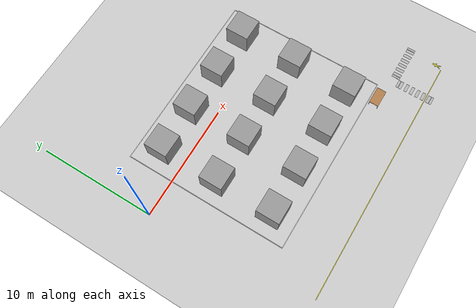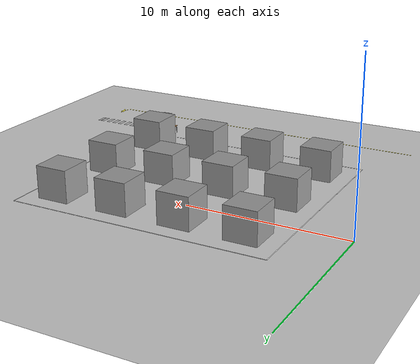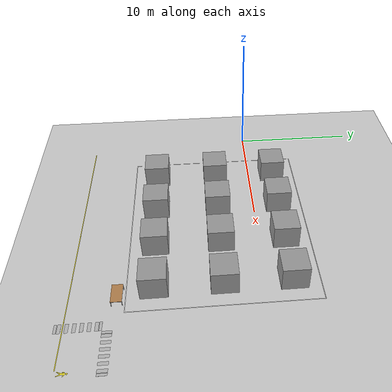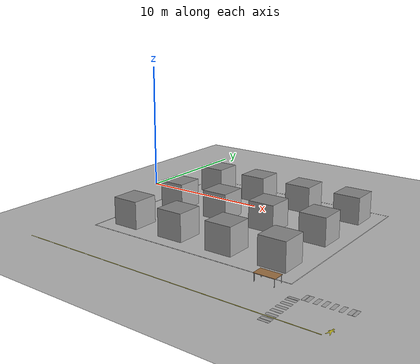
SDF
<sdf version="1.6">
 <world name="default">
  <model name="ground_plane">
   <static>1</static>
   <link name="link">
    <collision name="collision">
     <geometry><plane><normal>0 0 1</normal><size>100 100</size></plane></geometry>
     <surface><friction><ode><mu>100</mu><mu2>50</mu2></ode></friction></surface>
    </collision>
    <visual name="visual">
     <cast_shadows>0</cast_shadows>
     <geometry><plane><normal>0 0 1</normal><size>100 100</size></plane></geometry>
     <material>
      <script><uri>file://media/materials/scripts/gazebo.material</uri><name>Gazebo/Grey</name></script>
     </material>
    </visual>
   </link>
  </model>
  <model name="line22m_0">
   <link name="link_2">
    <inertial>
     <mass>1</mass>
     <inertia>
      <ixx>0.166667</ixx>
      <ixy>0</ixy>
      <ixz>0</ixz>
      <iyy>0.166667</iyy>
      <iyz>0</iyz>
      <izz>0.166667</izz>
     </inertia>
    </inertial>
    <visual name="visual">
     <geometry><box><size>0.05 22 0.001</size></box></geometry>
     <material>
      <lighting>1</lighting>
      <script><uri>file://media/materials/scripts/gazebo.material</uri><name>Gazebo/Yellow</name></script>
     </material>
    </visual>
   </link>
   <static>1</static>
   <pose>12.1233 -13.9726 0 0 -0 1.5708</pose>
  </model>
  <model name="CNCUnit_0">
   <link name="link_2">
    <inertial>
     <mass>1</mass>
     <inertia>
      <ixx>0.166667</ixx>
      <ixy>0</ixy>
      <ixz>0</ixz>
      <iyy>0.166667</iyy>
      <iyz>0</iyz>
      <izz>0.166667</izz>
     </inertia>
    </inertial>
    <visual name="ModelPreview_4::link_2::visual_2">
     <pose>-2 0 1 0 -0 0</pose>
     <geometry><box><size>2 2 2</size></box></geometry>
     <material>
      <lighting>1</lighting>
      <script><uri>file://media/materials/scripts/gazebo.material</uri><name>Gazebo/Grey</name></script>
      <shader type="vertex"><normal_map>__default__</normal_map></shader>
      <ambient>0.3 0.3 0.3 1</ambient>
      <diffuse>0.7 0.7 0.7 1</diffuse>
      <specular>0.01 0.01 0.01 1</specular>
      <emissive>0 0 0 1</emissive>
     </material>
    </visual>
    <visual name="ModelPreview_4::link_2::visual_5">
     <pose>-2 5 1 0 -0 0</pose>
     <geometry><box><size>2 2 2</size></box></geometry>
     <material>
      <lighting>1</lighting>
      <script><uri>file://media/materials/scripts/gazebo.material</uri><name>Gazebo/Grey</name></script>
      <shader type="vertex"><normal_map>__default__</normal_map></shader>
      <ambient>0.3 0.3 0.3 1</ambient>
      <diffuse>0.7 0.7 0.7 1</diffuse>
      <specular>0.01 0.01 0.01 1</specular>
      <emissive>0 0 0 1</emissive>
     </material>
    </visual>
    <visual name="ModelPreview_4::link_2::visual_6">
     <pose>2 5 1 0 -0 0</pose>
     <geometry><box><size>2 2 2</size></box></geometry>
     <material>
      <lighting>1</lighting>
      <script><uri>file://media/materials/scripts/gazebo.material</uri><name>Gazebo/Grey</name></script>
      <shader type="vertex"><normal_map>__default__</normal_map></shader>
      <ambient>0.3 0.3 0.3 1</ambient>
      <diffuse>0.7 0.7 0.7 1</diffuse>
      <specular>0.01 0.01 0.01 1</specular>
      <emissive>0 0 0 1</emissive>
     </material>
    </visual>
    <visual name="ModelPreview_4::link_2::visual_1">
     <pose>6 0 1 0 -0 0</pose>
     <geometry><box><size>2 2 2</size></box></geometry>
     <material>
      <lighting>1</lighting>
      <script><uri>file://media/materials/scripts/gazebo.material</uri><name>Gazebo/Grey</name></script>
      <shader type="vertex"><normal_map>__default__</normal_map></shader>
      <ambient>0.3 0.3 0.3 1</ambient>
      <diffuse>0.7 0.7 0.7 1</diffuse>
      <specular>0.01 0.01 0.01 1</specular>
      <emissive>0 0 0 1</emissive>
     </material>
    </visual>
    <visual name="visual">
     <pose>2 0 1 0 -0 0</pose>
     <geometry><box><size>2 2 2</size></box></geometry>
     <material>
      <lighting>1</lighting>
      <script><uri>file://media/materials/scripts/gazebo.material</uri><name>Gazebo/Grey</name></script>
      <shader type="vertex"><normal_map>__default__</normal_map></shader>
      <ambient>0.3 0.3 0.3 1</ambient>
      <diffuse>0.7 0.7 0.7 1</diffuse>
      <specular>0.01 0.01 0.01 1</specular>
      <emissive>0 0 0 1</emissive>
     </material>
    </visual>
    <visual name="ModelPreview_4::link_2::visual_4">
     <pose>-6 5 1 0 -0 0</pose>
     <geometry><box><size>2 2 2</size></box></geometry>
     <material>
      <lighting>1</lighting>
      <script><uri>file://media/materials/scripts/gazebo.material</uri><name>Gazebo/Grey</name></script>
      <shader type="vertex"><normal_map>__default__</normal_map></shader>
      <ambient>0.3 0.3 0.3 1</ambient>
      <diffuse>0.7 0.7 0.7 1</diffuse>
      <specular>0.01 0.01 0.01 1</specular>
      <emissive>0 0 0 1</emissive>
     </material>
    </visual>
    <visual name="ModelPreview_4::link_2::visual_7">
     <pose>6 5 1 0 -0 0</pose>
     <geometry><box><size>2 2 2</size></box></geometry>
     <material>
      <lighting>1</lighting>
      <script><uri>file://media/materials/scripts/gazebo.material</uri><name>Gazebo/Grey</name></script>
      <shader type="vertex"><normal_map>__default__</normal_map></shader>
      <ambient>0.3 0.3 0.3 1</ambient>
      <diffuse>0.7 0.7 0.7 1</diffuse>
      <specular>0.01 0.01 0.01 1</specular>
      <emissive>0 0 0 1</emissive>
     </material>
    </visual>
    <visual name="ModelPreview_4::link_2::visual_3">
     <pose>-6 0 1 0 -0 0</pose>
     <geometry><box><size>2 2 2</size></box></geometry>
     <material>
      <lighting>1</lighting>
      <script><uri>file://media/materials/scripts/gazebo.material</uri><name>Gazebo/Grey</name></script>
      <shader type="vertex"><normal_map>__default__</normal_map></shader>
      <ambient>0.3 0.3 0.3 1</ambient>
      <diffuse>0.7 0.7 0.7 1</diffuse>
      <specular>0.01 0.01 0.01 1</specular>
      <emissive>0 0 0 1</emissive>
     </material>
    </visual>
    <visual name="ModelPreview_4::link_2::visual_8">
     <pose>-6 -5 1 0 -0 0</pose>
     <geometry><box><size>2 2 2</size></box></geometry>
     <material>
      <lighting>1</lighting>
      <script><uri>file://media/materials/scripts/gazebo.material</uri><name>Gazebo/Grey</name></script>
      <shader type="vertex"><normal_map>__default__</normal_map></shader>
      <ambient>0.3 0.3 0.3 1</ambient>
      <diffuse>0.7 0.7 0.7 1</diffuse>
      <specular>0.01 0.01 0.01 1</specular>
      <emissive>0 0 0 1</emissive>
     </material>
    </visual>
    <visual name="ModelPreview_4::link_2::visual_9">
     <pose>-2 -5 1 0 -0 0</pose>
     <geometry><box><size>2 2 2</size></box></geometry>
     <material>
      <lighting>1</lighting>
      <script><uri>file://media/materials/scripts/gazebo.material</uri><name>Gazebo/Grey</name></script>
      <shader type="vertex"><normal_map>__default__</normal_map></shader>
      <ambient>0.3 0.3 0.3 1</ambient>
      <diffuse>0.7 0.7 0.7 1</diffuse>
      <specular>0.01 0.01 0.01 1</specular>
      <emissive>0 0 0 1</emissive>
     </material>
    </visual>
    <visual name="ModelPreview_4::link_2::visual_10">
     <pose>2 -5 1 0 -0 0</pose>
     <geometry><box><size>2 2 2</size></box></geometry>
     <material>
      <lighting>1</lighting>
      <script><uri>file://media/materials/scripts/gazebo.material</uri><name>Gazebo/Grey</name></script>
      <shader type="vertex"><normal_map>__default__</normal_map></shader>
      <ambient>0.3 0.3 0.3 1</ambient>
      <diffuse>0.7 0.7 0.7 1</diffuse>
      <specular>0.01 0.01 0.01 1</specular>
      <emissive>0 0 0 1</emissive>
     </material>
    </visual>
    <visual name="ModelPreview_4::link_2::visual_11">
     <pose>6 -5 1 0 -0 0</pose>
     <geometry><box><size>2 2 2</size></box></geometry>
     <material>
      <lighting>1</lighting>
      <script><uri>file://media/materials/scripts/gazebo.material</uri><name>Gazebo/Grey</name></script>
      <shader type="vertex"><normal_map>__default__</normal_map></shader>
      <ambient>0.3 0.3 0.3 1</ambient>
      <diffuse>0.7 0.7 0.7 1</diffuse>
      <specular>0.01 0.01 0.01 1</specular>
      <emissive>0 0 0 1</emissive>
     </material>
    </visual>
    <visual name="ModelPreview_4::link_2::visual_12">
     <pose>0 -7 0 0 -0 0</pose>
     <geometry><box><size>16.05 0.05 0.001</size></box></geometry>
     <material>
      <lighting>1</lighting>
      <script><uri>file://media/materials/scripts/gazebo.material</uri><name>Gazebo/White</name></script>
     </material>
    </visual>
    <visual name="ModelPreview_4::link_2::visual_13">
     <pose>0 7 0 0 -0 0</pose>
     <geometry><box><size>16.05 0.05 0.001</size></box></geometry>
     <material>
      <lighting>1</lighting>
      <script><uri>file://media/materials/scripts/gazebo.material</uri><name>Gazebo/White</name></script>
     </material>
    </visual>
    <visual name="ModelPreview_4::link_2::visual_14">
     <pose>8 0 0 0 -0 0</pose>
     <geometry><box><size>0.05 14 0.001</size></box></geometry>
     <material>
      <lighting>1</lighting>
      <script><uri>file://media/materials/scripts/gazebo.material</uri><name>Gazebo/White</name></script>
      <emissive>0 0 0 1</emissive>
     </material>
    </visual>
    <visual name="ModelPreview_4::link_2::visual_15">
     <pose>-8 0 0 0 -0 0</pose>
     <geometry><box><size>0.05 14 0.001</size></box></geometry>
     <material>
      <lighting>1</lighting>
      <script><uri>file://media/materials/scripts/gazebo.material</uri><name>Gazebo/White</name></script>
     </material>
    </visual>
    <collision name="collision_9">
     <pose>6 -5 1 0 -0 0</pose>
     <geometry><box><size>2 2 2</size></box></geometry>
     <surface>
      <friction>
       <ode><mu>1</mu><mu2>1</mu2><fdir1>0 0 0</fdir1><slip1>0</slip1><slip2>0</slip2></ode>
       <torsional>
        <coefficient>1</coefficient>
        <patch_radius>0</patch_radius>
        <surface_radius>0</surface_radius>
        <use_patch_radius>1</use_patch_radius>
        <ode><slip>0</slip></ode>
       </torsional>
      </friction>
      <bounce><restitution_coefficient>0</restitution_coefficient><threshold>1e+06</threshold></bounce>
      <contact>
       <collide_without_contact>0</collide_without_contact>
       <collide_without_contact_bitmask>1</collide_without_contact_bitmask>
       <collide_bitmask>1</collide_bitmask>
       <ode>
        <soft_cfm>0</soft_cfm>
        <soft_erp>0.2</soft_erp>
        <kp>1e+13</kp>
        <kd>1</kd>
        <max_vel>0.01</max_vel>
        <min_depth>0</min_depth>
       </ode>
       <bullet>
        <split_impulse>1</split_impulse>
        <split_impulse_penetration_threshold>-0.01</split_impulse_penetration_threshold>
        <soft_cfm>0</soft_cfm>
        <soft_erp>0.2</soft_erp>
        <kp>1e+13</kp>
        <kd>1</kd>
       </bullet>
      </contact>
     </surface>
    </collision>
    <collision name="collision_6">
     <pose>-2 5 1 0 -0 0</pose>
     <geometry><box><size>2 2 2</size></box></geometry>
     <surface>
      <friction>
       <ode><mu>1</mu><mu2>1</mu2><fdir1>0 0 0</fdir1><slip1>0</slip1><slip2>0</slip2></ode>
       <torsional>
        <coefficient>1</coefficient>
        <patch_radius>0</patch_radius>
        <surface_radius>0</surface_radius>
        <use_patch_radius>1</use_patch_radius>
        <ode><slip>0</slip></ode>
       </torsional>
      </friction>
      <bounce><restitution_coefficient>0</restitution_coefficient><threshold>1e+06</threshold></bounce>
      <contact>
       <collide_without_contact>0</collide_without_contact>
       <collide_without_contact_bitmask>1</collide_without_contact_bitmask>
       <collide_bitmask>1</collide_bitmask>
       <ode>
        <soft_cfm>0</soft_cfm>
        <soft_erp>0.2</soft_erp>
        <kp>1e+13</kp>
        <kd>1</kd>
        <max_vel>0.01</max_vel>
        <min_depth>0</min_depth>
       </ode>
       <bullet>
        <split_impulse>1</split_impulse>
        <split_impulse_penetration_threshold>-0.01</split_impulse_penetration_threshold>
        <soft_cfm>0</soft_cfm>
        <soft_erp>0.2</soft_erp>
        <kp>1e+13</kp>
        <kd>1</kd>
       </bullet>
      </contact>
     </surface>
    </collision>
    <collision name="collision">
     <pose>2 0 1 0 -0 0</pose>
     <geometry><box><size>2 2 2</size></box></geometry>
     <surface>
      <friction>
       <ode><mu>1</mu><mu2>1</mu2><fdir1>0 0 0</fdir1><slip1>0</slip1><slip2>0</slip2></ode>
       <torsional>
        <coefficient>1</coefficient>
        <patch_radius>0</patch_radius>
        <surface_radius>0</surface_radius>
        <use_patch_radius>1</use_patch_radius>
        <ode><slip>0</slip></ode>
       </torsional>
      </friction>
      <bounce><restitution_coefficient>0</restitution_coefficient><threshold>1e+06</threshold></bounce>
      <contact>
       <collide_without_contact>0</collide_without_contact>
       <collide_without_contact_bitmask>1</collide_without_contact_bitmask>
       <collide_bitmask>1</collide_bitmask>
       <ode>
        <soft_cfm>0</soft_cfm>
        <soft_erp>0.2</soft_erp>
        <kp>1e+13</kp>
        <kd>1</kd>
        <max_vel>0.01</max_vel>
        <min_depth>0</min_depth>
       </ode>
       <bullet>
        <split_impulse>1</split_impulse>
        <split_impulse_penetration_threshold>-0.01</split_impulse_penetration_threshold>
        <soft_cfm>0</soft_cfm>
        <soft_erp>0.2</soft_erp>
        <kp>1e+13</kp>
        <kd>1</kd>
       </bullet>
      </contact>
     </surface>
    </collision>
    <collision name="collision_10">
     <pose>-2 -5 1 0 -0 0</pose>
     <geometry><box><size>2 2 2</size></box></geometry>
     <surface>
      <friction>
       <ode><mu>1</mu><mu2>1</mu2><fdir1>0 0 0</fdir1><slip1>0</slip1><slip2>0</slip2></ode>
       <torsional>
        <coefficient>1</coefficient>
        <patch_radius>0</patch_radius>
        <surface_radius>0</surface_radius>
        <use_patch_radius>1</use_patch_radius>
        <ode><slip>0</slip></ode>
       </torsional>
      </friction>
      <bounce><restitution_coefficient>0</restitution_coefficient><threshold>1e+06</threshold></bounce>
      <contact>
       <collide_without_contact>0</collide_without_contact>
       <collide_without_contact_bitmask>1</collide_without_contact_bitmask>
       <collide_bitmask>1</collide_bitmask>
       <ode>
        <soft_cfm>0</soft_cfm>
        <soft_erp>0.2</soft_erp>
        <kp>1e+13</kp>
        <kd>1</kd>
        <max_vel>0.01</max_vel>
        <min_depth>0</min_depth>
       </ode>
       <bullet>
        <split_impulse>1</split_impulse>
        <split_impulse_penetration_threshold>-0.01</split_impulse_penetration_threshold>
        <soft_cfm>0</soft_cfm>
        <soft_erp>0.2</soft_erp>
        <kp>1e+13</kp>
        <kd>1</kd>
       </bullet>
      </contact>
     </surface>
    </collision>
    <collision name="collision_4">
     <pose>2 5 1 0 -0 0</pose>
     <geometry><box><size>2 2 2</size></box></geometry>
     <surface>
      <friction>
       <ode><mu>1</mu><mu2>1</mu2><fdir1>0 0 0</fdir1><slip1>0</slip1><slip2>0</slip2></ode>
       <torsional>
        <coefficient>1</coefficient>
        <patch_radius>0</patch_radius>
        <surface_radius>0</surface_radius>
        <use_patch_radius>1</use_patch_radius>
        <ode><slip>0</slip></ode>
       </torsional>
      </friction>
      <bounce><restitution_coefficient>0</restitution_coefficient><threshold>1e+06</threshold></bounce>
      <contact>
       <collide_without_contact>0</collide_without_contact>
       <collide_without_contact_bitmask>1</collide_without_contact_bitmask>
       <collide_bitmask>1</collide_bitmask>
       <ode>
        <soft_cfm>0</soft_cfm>
        <soft_erp>0.2</soft_erp>
        <kp>1e+13</kp>
        <kd>1</kd>
        <max_vel>0.01</max_vel>
        <min_depth>0</min_depth>
       </ode>
       <bullet>
        <split_impulse>1</split_impulse>
        <split_impulse_penetration_threshold>-0.01</split_impulse_penetration_threshold>
        <soft_cfm>0</soft_cfm>
        <soft_erp>0.2</soft_erp>
        <kp>1e+13</kp>
        <kd>1</kd>
       </bullet>
      </contact>
     </surface>
    </collision>
    <collision name="collision_7">
     <pose>-6 5 1 0 -0 0</pose>
     <geometry><box><size>2 2 2</size></box></geometry>
     <surface>
      <friction>
       <ode><mu>1</mu><mu2>1</mu2><fdir1>0 0 0</fdir1><slip1>0</slip1><slip2>0</slip2></ode>
       <torsional>
        <coefficient>1</coefficient>
        <patch_radius>0</patch_radius>
        <surface_radius>0</surface_radius>
        <use_patch_radius>1</use_patch_radius>
        <ode><slip>0</slip></ode>
       </torsional>
      </friction>
      <bounce><restitution_coefficient>0</restitution_coefficient><threshold>1e+06</threshold></bounce>
      <contact>
       <collide_without_contact>0</collide_without_contact>
       <collide_without_contact_bitmask>1</collide_without_contact_bitmask>
       <collide_bitmask>1</collide_bitmask>
       <ode>
        <soft_cfm>0</soft_cfm>
        <soft_erp>0.2</soft_erp>
        <kp>1e+13</kp>
        <kd>1</kd>
        <max_vel>0.01</max_vel>
        <min_depth>0</min_depth>
       </ode>
       <bullet>
        <split_impulse>1</split_impulse>
        <split_impulse_penetration_threshold>-0.01</split_impulse_penetration_threshold>
        <soft_cfm>0</soft_cfm>
        <soft_erp>0.2</soft_erp>
        <kp>1e+13</kp>
        <kd>1</kd>
       </bullet>
      </contact>
     </surface>
    </collision>
    <collision name="collision_1">
     <pose>-2 0 1 0 -0 0</pose>
     <geometry><box><size>2 2 2</size></box></geometry>
     <surface>
      <friction>
       <ode><mu>1</mu><mu2>1</mu2><fdir1>0 0 0</fdir1><slip1>0</slip1><slip2>0</slip2></ode>
       <torsional>
        <coefficient>1</coefficient>
        <patch_radius>0</patch_radius>
        <surface_radius>0</surface_radius>
        <use_patch_radius>1</use_patch_radius>
        <ode><slip>0</slip></ode>
       </torsional>
      </friction>
      <bounce><restitution_coefficient>0</restitution_coefficient><threshold>1e+06</threshold></bounce>
      <contact>
       <collide_without_contact>0</collide_without_contact>
       <collide_without_contact_bitmask>1</collide_without_contact_bitmask>
       <collide_bitmask>1</collide_bitmask>
       <ode>
        <soft_cfm>0</soft_cfm>
        <soft_erp>0.2</soft_erp>
        <kp>1e+13</kp>
        <kd>1</kd>
        <max_vel>0.01</max_vel>
        <min_depth>0</min_depth>
       </ode>
       <bullet>
        <split_impulse>1</split_impulse>
        <split_impulse_penetration_threshold>-0.01</split_impulse_penetration_threshold>
        <soft_cfm>0</soft_cfm>
        <soft_erp>0.2</soft_erp>
        <kp>1e+13</kp>
        <kd>1</kd>
       </bullet>
      </contact>
     </surface>
    </collision>
    <collision name="collision_5">
     <pose>6 5 1 0 -0 0</pose>
     <geometry><box><size>2 2 2</size></box></geometry>
     <surface>
      <friction>
       <ode><mu>1</mu><mu2>1</mu2><fdir1>0 0 0</fdir1><slip1>0</slip1><slip2>0</slip2></ode>
       <torsional>
        <coefficient>1</coefficient>
        <patch_radius>0</patch_radius>
        <surface_radius>0</surface_radius>
        <use_patch_radius>1</use_patch_radius>
        <ode><slip>0</slip></ode>
       </torsional>
      </friction>
      <bounce><restitution_coefficient>0</restitution_coefficient><threshold>1e+06</threshold></bounce>
      <contact>
       <collide_without_contact>0</collide_without_contact>
       <collide_without_contact_bitmask>1</collide_without_contact_bitmask>
       <collide_bitmask>1</collide_bitmask>
       <ode>
        <soft_cfm>0</soft_cfm>
        <soft_erp>0.2</soft_erp>
        <kp>1e+13</kp>
        <kd>1</kd>
        <max_vel>0.01</max_vel>
        <min_depth>0</min_depth>
       </ode>
       <bullet>
        <split_impulse>1</split_impulse>
        <split_impulse_penetration_threshold>-0.01</split_impulse_penetration_threshold>
        <soft_cfm>0</soft_cfm>
        <soft_erp>0.2</soft_erp>
        <kp>1e+13</kp>
        <kd>1</kd>
       </bullet>
      </contact>
     </surface>
    </collision>
    <collision name="collision_3">
     <pose>6 0 1 0 -0 0</pose>
     <geometry><box><size>2 2 2</size></box></geometry>
     <surface>
      <friction>
       <ode><mu>1</mu><mu2>1</mu2><fdir1>0 0 0</fdir1><slip1>0</slip1><slip2>0</slip2></ode>
       <torsional>
        <coefficient>1</coefficient>
        <patch_radius>0</patch_radius>
        <surface_radius>0</surface_radius>
        <use_patch_radius>1</use_patch_radius>
        <ode><slip>0</slip></ode>
       </torsional>
      </friction>
      <bounce><restitution_coefficient>0</restitution_coefficient><threshold>1e+06</threshold></bounce>
      <contact>
       <collide_without_contact>0</collide_without_contact>
       <collide_without_contact_bitmask>1</collide_without_contact_bitmask>
       <collide_bitmask>1</collide_bitmask>
       <ode>
        <soft_cfm>0</soft_cfm>
        <soft_erp>0.2</soft_erp>
        <kp>1e+13</kp>
        <kd>1</kd>
        <max_vel>0.01</max_vel>
        <min_depth>0</min_depth>
       </ode>
       <bullet>
        <split_impulse>1</split_impulse>
        <split_impulse_penetration_threshold>-0.01</split_impulse_penetration_threshold>
        <soft_cfm>0</soft_cfm>
        <soft_erp>0.2</soft_erp>
        <kp>1e+13</kp>
        <kd>1</kd>
       </bullet>
      </contact>
     </surface>
    </collision>
    <collision name="collision_2">
     <pose>-6 0 1 0 -0 0</pose>
     <geometry><box><size>2 2 2</size></box></geometry>
     <surface>
      <friction>
       <ode><mu>1</mu><mu2>1</mu2><fdir1>0 0 0</fdir1><slip1>0</slip1><slip2>0</slip2></ode>
       <torsional>
        <coefficient>1</coefficient>
        <patch_radius>0</patch_radius>
        <surface_radius>0</surface_radius>
        <use_patch_radius>1</use_patch_radius>
        <ode><slip>0</slip></ode>
       </torsional>
      </friction>
      <bounce><restitution_coefficient>0</restitution_coefficient><threshold>1e+06</threshold></bounce>
      <contact>
       <collide_without_contact>0</collide_without_contact>
       <collide_without_contact_bitmask>1</collide_without_contact_bitmask>
       <collide_bitmask>1</collide_bitmask>
       <ode>
        <soft_cfm>0</soft_cfm>
        <soft_erp>0.2</soft_erp>
        <kp>1e+13</kp>
        <kd>1</kd>
        <max_vel>0.01</max_vel>
        <min_depth>0</min_depth>
       </ode>
       <bullet>
        <split_impulse>1</split_impulse>
        <split_impulse_penetration_threshold>-0.01</split_impulse_penetration_threshold>
        <soft_cfm>0</soft_cfm>
        <soft_erp>0.2</soft_erp>
        <kp>1e+13</kp>
        <kd>1</kd>
       </bullet>
      </contact>
     </surface>
    </collision>
    <collision name="collision_8">
     <pose>2 -5 1 0 -0 0</pose>
     <geometry><box><size>2 2 2</size></box></geometry>
     <surface>
      <friction>
       <ode><mu>1</mu><mu2>1</mu2><fdir1>0 0 0</fdir1><slip1>0</slip1><slip2>0</slip2></ode>
       <torsional>
        <coefficient>1</coefficient>
        <patch_radius>0</patch_radius>
        <surface_radius>0</surface_radius>
        <use_patch_radius>1</use_patch_radius>
        <ode><slip>0</slip></ode>
       </torsional>
      </friction>
      <bounce><restitution_coefficient>0</restitution_coefficient><threshold>1e+06</threshold></bounce>
      <contact>
       <collide_without_contact>0</collide_without_contact>
       <collide_without_contact_bitmask>1</collide_without_contact_bitmask>
       <collide_bitmask>1</collide_bitmask>
       <ode>
        <soft_cfm>0</soft_cfm>
        <soft_erp>0.2</soft_erp>
        <kp>1e+13</kp>
        <kd>1</kd>
        <max_vel>0.01</max_vel>
        <min_depth>0</min_depth>
       </ode>
       <bullet>
        <split_impulse>1</split_impulse>
        <split_impulse_penetration_threshold>-0.01</split_impulse_penetration_threshold>
        <soft_cfm>0</soft_cfm>
        <soft_erp>0.2</soft_erp>
        <kp>1e+13</kp>
        <kd>1</kd>
       </bullet>
      </contact>
     </surface>
    </collision>
    <collision name="collision_11">
     <pose>-6 -5 1 0 -0 0</pose>
     <geometry><box><size>2 2 2</size></box></geometry>
     <surface>
      <friction>
       <ode><mu>1</mu><mu2>1</mu2><fdir1>0 0 0</fdir1><slip1>0</slip1><slip2>0</slip2></ode>
       <torsional>
        <coefficient>1</coefficient>
        <patch_radius>0</patch_radius>
        <surface_radius>0</surface_radius>
        <use_patch_radius>1</use_patch_radius>
        <ode><slip>0</slip></ode>
       </torsional>
      </friction>
      <bounce><restitution_coefficient>0</restitution_coefficient><threshold>1e+06</threshold></bounce>
      <contact>
       <collide_without_contact>0</collide_without_contact>
       <collide_without_contact_bitmask>1</collide_without_contact_bitmask>
       <collide_bitmask>1</collide_bitmask>
       <ode>
        <soft_cfm>0</soft_cfm>
        <soft_erp>0.2</soft_erp>
        <kp>1e+13</kp>
        <kd>1</kd>
        <max_vel>0.01</max_vel>
        <min_depth>0</min_depth>
       </ode>
       <bullet>
        <split_impulse>1</split_impulse>
        <split_impulse_penetration_threshold>-0.01</split_impulse_penetration_threshold>
        <soft_cfm>0</soft_cfm>
        <soft_erp>0.2</soft_erp>
        <kp>1e+13</kp>
        <kd>1</kd>
       </bullet>
      </contact>
     </surface>
    </collision>
    <collision name="collision_12">
     <pose>0 7 0 0 -0 0</pose>
     <geometry><box><size>16.05 0.05 0.001</size></box></geometry>
     <surface>
      <friction>
       <ode><mu>1</mu><mu2>1</mu2><fdir1>0 0 0</fdir1><slip1>0</slip1><slip2>0</slip2></ode>
       <torsional>
        <coefficient>1</coefficient>
        <patch_radius>0</patch_radius>
        <surface_radius>0</surface_radius>
        <use_patch_radius>1</use_patch_radius>
        <ode><slip>0</slip></ode>
       </torsional>
      </friction>
      <bounce><restitution_coefficient>0</restitution_coefficient><threshold>1e+06</threshold></bounce>
      <contact>
       <collide_without_contact>0</collide_without_contact>
       <collide_without_contact_bitmask>1</collide_without_contact_bitmask>
       <collide_bitmask>1</collide_bitmask>
       <ode>
        <soft_cfm>0</soft_cfm>
        <soft_erp>0.2</soft_erp>
        <kp>1e+13</kp>
        <kd>1</kd>
        <max_vel>0.01</max_vel>
        <min_depth>0</min_depth>
       </ode>
       <bullet>
        <split_impulse>1</split_impulse>
        <split_impulse_penetration_threshold>-0.01</split_impulse_penetration_threshold>
        <soft_cfm>0</soft_cfm>
        <soft_erp>0.2</soft_erp>
        <kp>1e+13</kp>
        <kd>1</kd>
       </bullet>
      </contact>
     </surface>
    </collision>
    <collision name="collision_13">
     <pose>0 -7 0 0 -0 0</pose>
     <geometry><box><size>16.05 0.05 0.001</size></box></geometry>
     <surface>
      <friction>
       <ode><mu>1</mu><mu2>1</mu2><fdir1>0 0 0</fdir1><slip1>0</slip1><slip2>0</slip2></ode>
       <torsional>
        <coefficient>1</coefficient>
        <patch_radius>0</patch_radius>
        <surface_radius>0</surface_radius>
        <use_patch_radius>1</use_patch_radius>
        <ode><slip>0</slip></ode>
       </torsional>
      </friction>
      <bounce><restitution_coefficient>0</restitution_coefficient><threshold>1e+06</threshold></bounce>
      <contact>
       <collide_without_contact>0</collide_without_contact>
       <collide_without_contact_bitmask>1</collide_without_contact_bitmask>
       <collide_bitmask>1</collide_bitmask>
       <ode>
        <soft_cfm>0</soft_cfm>
        <soft_erp>0.2</soft_erp>
        <kp>1e+13</kp>
        <kd>1</kd>
        <max_vel>0.01</max_vel>
        <min_depth>0</min_depth>
       </ode>
       <bullet>
        <split_impulse>1</split_impulse>
        <split_impulse_penetration_threshold>-0.01</split_impulse_penetration_threshold>
        <soft_cfm>0</soft_cfm>
        <soft_erp>0.2</soft_erp>
        <kp>1e+13</kp>
        <kd>1</kd>
       </bullet>
      </contact>
     </surface>
    </collision>
    <collision name="collision_14">
     <pose>8 0 0 0 -0 0</pose>
     <geometry><box><size>0.05 14.05 0.001</size></box></geometry>
     <surface>
      <friction>
       <ode><mu>1</mu><mu2>1</mu2><fdir1>0 0 0</fdir1><slip1>0</slip1><slip2>0</slip2></ode>
       <torsional>
        <coefficient>1</coefficient>
        <patch_radius>0</patch_radius>
        <surface_radius>0</surface_radius>
        <use_patch_radius>1</use_patch_radius>
        <ode><slip>0</slip></ode>
       </torsional>
      </friction>
      <bounce><restitution_coefficient>0</restitution_coefficient><threshold>1e+06</threshold></bounce>
      <contact>
       <collide_without_contact>0</collide_without_contact>
       <collide_without_contact_bitmask>1</collide_without_contact_bitmask>
       <collide_bitmask>1</collide_bitmask>
       <ode>
        <soft_cfm>0</soft_cfm>
        <soft_erp>0.2</soft_erp>
        <kp>1e+13</kp>
        <kd>1</kd>
        <max_vel>0.01</max_vel>
        <min_depth>0</min_depth>
       </ode>
       <bullet>
        <split_impulse>1</split_impulse>
        <split_impulse_penetration_threshold>-0.01</split_impulse_penetration_threshold>
        <soft_cfm>0</soft_cfm>
        <soft_erp>0.2</soft_erp>
        <kp>1e+13</kp>
        <kd>1</kd>
       </bullet>
      </contact>
     </surface>
    </collision>
    <collision name="collision_15">
     <pose>-8 0 0 0 -0 0</pose>
     <geometry><box><size>0.05 14.05 0.001</size></box></geometry>
     <surface>
      <friction>
       <ode><mu>1</mu><mu2>1</mu2><fdir1>0 0 0</fdir1><slip1>0</slip1><slip2>0</slip2></ode>
       <torsional>
        <coefficient>1</coefficient>
        <patch_radius>0</patch_radius>
        <surface_radius>0</surface_radius>
        <use_patch_radius>1</use_patch_radius>
        <ode><slip>0</slip></ode>
       </torsional>
      </friction>
      <bounce><restitution_coefficient>0</restitution_coefficient><threshold>1e+06</threshold></bounce>
      <contact>
       <collide_without_contact>0</collide_without_contact>
       <collide_without_contact_bitmask>1</collide_without_contact_bitmask>
       <collide_bitmask>1</collide_bitmask>
       <ode>
        <soft_cfm>0</soft_cfm>
        <soft_erp>0.2</soft_erp>
        <kp>1e+13</kp>
        <kd>1</kd>
        <max_vel>0.01</max_vel>
        <min_depth>0</min_depth>
       </ode>
       <bullet>
        <split_impulse>1</split_impulse>
        <split_impulse_penetration_threshold>-0.01</split_impulse_penetration_threshold>
        <soft_cfm>0</soft_cfm>
        <soft_erp>0.2</soft_erp>
        <kp>1e+13</kp>
        <kd>1</kd>
       </bullet>
      </contact>
     </surface>
    </collision>
   </link>
   <static>1</static>
   <pose>11.1128 -3 0 0 -0 0</pose>
  </model>
  <model name="crosswalk_8">
   <link name="link_0">
    <inertial>
     <mass>1</mass>
     <inertia>
      <ixx>0.166667</ixx>
      <ixy>0</ixy>
      <ixz>0</ixz>
      <iyy>0.166667</iyy>
      <iyz>0</iyz>
      <izz>0.166667</izz>
     </inertia>
    </inertial>
    <visual name="visual">
     <pose>0.25 0 0 0 -0 0</pose>
     <geometry><box><size>0.25 0.7 0.001</size></box></geometry>
     <material><lighting>1</lighting></material>
    </visual>
    <visual name="ModelPreview_0::link_0::visual_1">
     <pose>0.75 0 0 0 -0 0</pose>
     <geometry><box><size>0.25 0.7 0.001</size></box></geometry>
     <material><lighting>1</lighting></material>
    </visual>
    <visual name="ModelPreview_0::link_0::visual_2">
     <pose>1.25 0 0 0 -0 0</pose>
     <geometry><box><size>0.25 0.7 0.001</size></box></geometry>
     <material><lighting>1</lighting></material>
    </visual>
    <visual name="ModelPreview_0::link_0::visual_3">
     <pose>-0.25 0 0 0 -0 0</pose>
     <geometry><box><size>0.25 0.7 0.001</size></box></geometry>
     <material><lighting>1</lighting></material>
    </visual>
    <visual name="ModelPreview_0::link_0::visual_4">
     <pose>-0.75 0 0 0 -0 0</pose>
     <geometry><box><size>0.25 0.7 0.001</size></box></geometry>
     <material><lighting>1</lighting></material>
    </visual>
    <visual name="ModelPreview_0::link_0::visual_5">
     <pose>-1.25 0 0 0 -0 0</pose>
     <geometry><box><size>0.25 0.7 0.001</size></box></geometry>
     <material><lighting>1</lighting></material>
    </visual>
    <visual name="ModelPreview_0::link_0::visual_6">
     <pose>-1.6 0.35 0 -1.5708 -0 -1.5708</pose>
     <geometry>
      <mesh><uri>model://crosswalk/model/Warning+sign+confined+space/model.dae</uri><scale>2.35 2 0.9</scale></mesh>
     </geometry>
    </visual>
    <visual name="ModelPreview_0::link_0::visual_7">
     <pose>1.6 -0.35 0 -1.5708 0 1.5708</pose>
     <geometry>
      <mesh><uri>model://crosswalk/model/Warning+sign+confined+space/model.dae</uri><scale>2.35 2 0.9</scale></mesh>
     </geometry>
     <material><lighting>1</lighting></material>
    </visual>
   </link>
   <static>1</static>
   <pose>22.085 -11.0123 0 0 -0 0</pose>
  </model>
  <model name="crosswalk_12">
   <link name="link_0">
    <inertial>
     <mass>1</mass>
     <inertia>
      <ixx>0.166667</ixx>
      <ixy>0</ixy>
      <ixz>0</ixz>
      <iyy>0.166667</iyy>
      <iyz>0</iyz>
      <izz>0.166667</izz>
     </inertia>
    </inertial>
    <visual name="visual">
     <pose>0.25 0 0 0 -0 0</pose>
     <geometry><box><size>0.25 0.7 0.001</size></box></geometry>
     <material><lighting>1</lighting></material>
    </visual>
    <visual name="ModelPreview_0::link_0::visual_1">
     <pose>0.75 0 0 0 -0 0</pose>
     <geometry><box><size>0.25 0.7 0.001</size></box></geometry>
     <material><lighting>1</lighting></material>
    </visual>
    <visual name="ModelPreview_0::link_0::visual_2">
     <pose>1.25 0 0 0 -0 0</pose>
     <geometry><box><size>0.25 0.7 0.001</size></box></geometry>
     <material><lighting>1</lighting></material>
    </visual>
    <visual name="ModelPreview_0::link_0::visual_3">
     <pose>-0.25 0 0 0 -0 0</pose>
     <geometry><box><size>0.25 0.7 0.001</size></box></geometry>
     <material><lighting>1</lighting></material>
    </visual>
    <visual name="ModelPreview_0::link_0::visual_4">
     <pose>-0.75 0 0 0 -0 0</pose>
     <geometry><box><size>0.25 0.7 0.001</size></box></geometry>
     <material><lighting>1</lighting></material>
    </visual>
    <visual name="ModelPreview_0::link_0::visual_5">
     <pose>-1.25 0 0 0 -0 0</pose>
     <geometry><box><size>0.25 0.7 0.001</size></box></geometry>
     <material><lighting>1</lighting></material>
    </visual>
    <visual name="ModelPreview_0::link_0::visual_6">
     <pose>-1.6 0.35 0 -1.5708 -0 -1.5708</pose>
     <geometry>
      <mesh><uri>model://crosswalk/model/Warning+sign+confined+space/model.dae</uri><scale>2.35 2 0.9</scale></mesh>
     </geometry>
    </visual>
    <visual name="ModelPreview_0::link_0::visual_7">
     <pose>1.6 -0.35 0 -1.5708 0 1.5708</pose>
     <geometry>
      <mesh><uri>model://crosswalk/model/Warning+sign+confined+space/model.dae</uri><scale>2.35 2 0.9</scale></mesh>
     </geometry>
     <material><lighting>1</lighting></material>
    </visual>
   </link>
   <static>1</static>
   <pose>20.1024 -12.9687 0 0 -0 1.5708</pose>
  </model>
  <model name="pedestrianSign_1">
   <link name="link_0">
    <inertial>
     <mass>1</mass>
     <inertia>
      <ixx>0.166667</ixx>
      <ixy>0</ixy>
      <ixz>0</ixz>
      <iyy>0.166667</iyy>
      <iyz>0</iyz>
      <izz>0.166667</izz>
     </inertia>
    </inertial>
    <visual name="visual">
     <geometry><mesh><uri>model://pedestrianSign/model/model.dae</uri></mesh></geometry>
     <material>
      <lighting>1</lighting>
      <script><uri>file://media/materials/scripts/gazebo.material</uri><name>Gazebo/Yellow</name></script>
     </material>
    </visual>
    <collision name="collision">
     <geometry><box><size>1 0.7 0.001</size></box></geometry>
     <surface>
      <friction>
       <ode><mu>1</mu><mu2>1</mu2><fdir1>0 0 0</fdir1><slip1>0</slip1><slip2>0</slip2></ode>
       <torsional>
        <coefficient>1</coefficient>
        <patch_radius>0</patch_radius>
        <surface_radius>0</surface_radius>
        <use_patch_radius>1</use_patch_radius>
        <ode><slip>0</slip></ode>
       </torsional>
      </friction>
      <bounce><restitution_coefficient>0</restitution_coefficient><threshold>1e+06</threshold></bounce>
      <contact>
       <collide_without_contact>0</collide_without_contact>
       <collide_without_contact_bitmask>1</collide_without_contact_bitmask>
       <collide_bitmask>1</collide_bitmask>
       <ode>
        <soft_cfm>0</soft_cfm>
        <soft_erp>0.2</soft_erp>
        <kp>1e+13</kp>
        <kd>1</kd>
        <max_vel>0.01</max_vel>
        <min_depth>0</min_depth>
       </ode>
       <bullet>
        <split_impulse>1</split_impulse>
        <split_impulse_penetration_threshold>-0.01</split_impulse_penetration_threshold>
        <soft_cfm>0</soft_cfm>
        <soft_erp>0.2</soft_erp>
        <kp>1e+13</kp>
        <kd>1</kd>
       </bullet>
      </contact>
     </surface>
    </collision>
   </link>
   <static>1</static>
   <pose>23.1648 -13.8283 0.001 0 -0 0</pose>
  </model>
  <model name="table_6">
   <static>1</static>
   <link name="link">
    <collision name="surface">
     <pose>0 0 1 0 -0 0</pose>
     <geometry><box><size>1.5 0.8 0.03</size></box></geometry>
     <surface><friction><ode><mu>0.6</mu><mu2>0.6</mu2></ode></friction></surface>
    </collision>
    <visual name="visual1">
     <pose>0 0 1 0 -0 0</pose>
     <geometry><box><size>1.5 0.8 0.03</size></box></geometry>
     <material>
      <script><uri>file://media/materials/scripts/gazebo.material</uri><name>Gazebo/Wood</name></script>
     </material>
    </visual>
    <collision name="front_left_leg">
     <pose>0.68 0.38 0.5 0 -0 0</pose>
     <geometry><cylinder><radius>0.02</radius><length>1</length></cylinder></geometry>
    </collision>
    <visual name="front_left_leg">
     <pose>0.68 0.38 0.5 0 -0 0</pose>
     <geometry><cylinder><radius>0.02</radius><length>1</length></cylinder></geometry>
     <material>
      <script><uri>file://media/materials/scripts/gazebo.material</uri><name>Gazebo/Grey</name></script>
     </material>
    </visual>
    <collision name="front_right_leg">
     <pose>0.68 -0.38 0.5 0 -0 0</pose>
     <geometry><cylinder><radius>0.02</radius><length>1</length></cylinder></geometry>
    </collision>
    <visual name="front_right_leg">
     <pose>0.68 -0.38 0.5 0 -0 0</pose>
     <geometry><cylinder><radius>0.02</radius><length>1</length></cylinder></geometry>
     <material>
      <script><uri>file://media/materials/scripts/gazebo.material</uri><name>Gazebo/Grey</name></script>
     </material>
    </visual>
    <collision name="back_right_leg">
     <pose>-0.68 -0.38 0.5 0 -0 0</pose>
     <geometry><cylinder><radius>0.02</radius><length>1</length></cylinder></geometry>
    </collision>
    <visual name="back_right_leg">
     <pose>-0.68 -0.38 0.5 0 -0 0</pose>
     <geometry><cylinder><radius>0.02</radius><length>1</length></cylinder></geometry>
     <material>
      <script><uri>file://media/materials/scripts/gazebo.material</uri><name>Gazebo/Grey</name></script>
     </material>
    </visual>
    <collision name="back_left_leg">
     <pose>-0.68 0.38 0.5 0 -0 0</pose>
     <geometry><cylinder><radius>0.02</radius><length>1</length></cylinder></geometry>
    </collision>
    <visual name="back_left_leg">
     <pose>-0.68 0.38 0.5 0 -0 0</pose>
     <geometry><cylinder><radius>0.02</radius><length>1</length></cylinder></geometry>
     <material>
      <script><uri>file://media/materials/scripts/gazebo.material</uri><name>Gazebo/Grey</name></script>
     </material>
    </visual>
   </link>
   <pose>17.8503 -10.54 -0.5 0 -0 0</pose>
  </model>
 </world>
</sdf>
